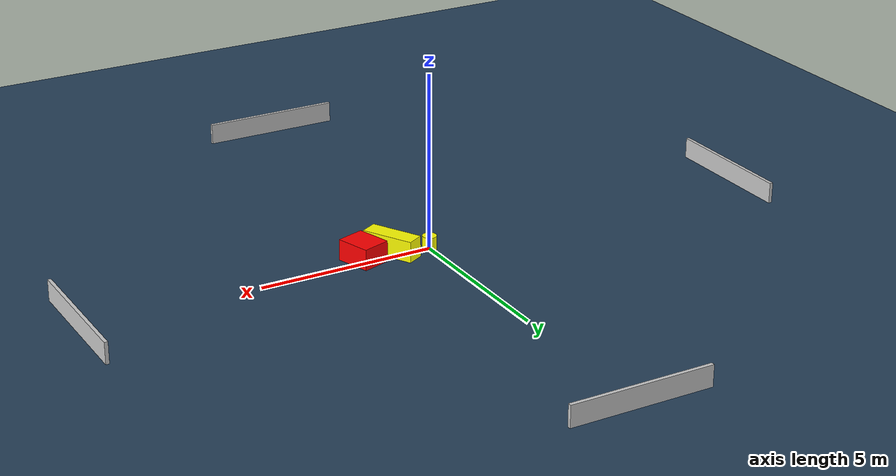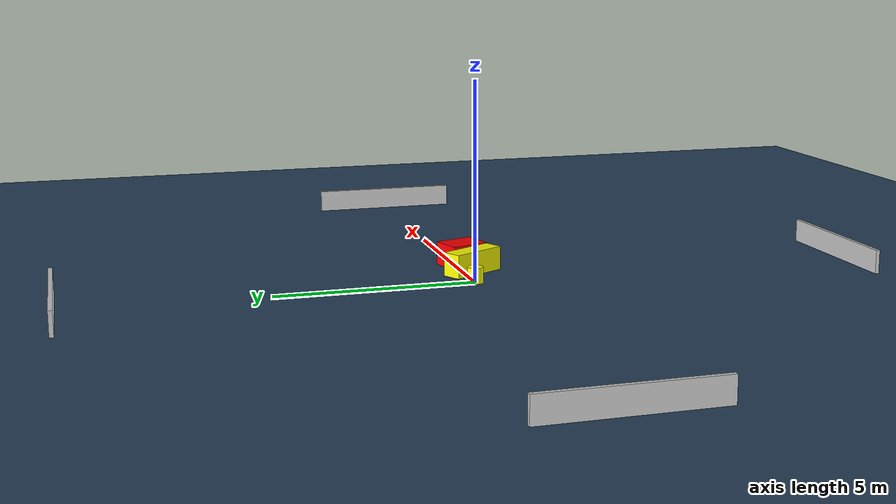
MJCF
<?xml version="1.0" ?>
<mujoco model="generated_environment">
  <option timestep="0.01" integrator="RK4" cone="elliptic"/>
  <default>
    <geom density="1"/>
  </default>
  <asset>
    <texture builtin="gradient" height="3072" name="skybox" rgb1="0.3 0.5 0.7" rgb2="0 0 0" type="skybox" width="512"/>
    <texture builtin="checker" height="300" name="groundplane" rgb1="0.2 0.3 0.4" rgb2="0.1 0.2 0.3" type="2d" width="300"/>
    <material name="groundplane" reflectance="0.2" texrepeat="5 5" texture="groundplane"/>
  </asset>
  <worldbody>
    <light dir="0 0 -1" directional="true" pos="0 0 1.5"/>
    <geom condim="3" friction="0.5 0.005 0.001" material="groundplane" name="floor" pos="0 0 0" size="0 0 0.05" type="plane"/>
    <body name="walls">
      <geom name="wall_1" condim="4" pos="-10.0 0.0 0.3" rgba="0.800000011920929 0.800000011920929 0.800000011920929 1.0" size="0.05 2.0 0.3" type="box"/>
      <geom name="wall_2" condim="4" pos="10.0 0.0 0.3" rgba="0.800000011920929 0.800000011920929 0.800000011920929 1.0" size="0.05 2.0 0.3" type="box"/>
      <geom name="wall_3" condim="4" pos="0.0 -10.0 0.3" rgba="0.800000011920929 0.800000011920929 0.800000011920929 1.0" size="2.0 0.05 0.3" type="box"/>
      <geom name="wall_4" condim="4" pos="0.0 10.0 0.3" rgba="0.800000011920929 0.800000011920929 0.800000011920929 1.0" size="2.0 0.05 0.3" type="box"/>
    </body>
    <body name="robot">
      <joint name="joint_x" type="slide" pos="0 0 0" axis="1 0 0"/>
      <joint name="joint_y" type="slide" pos="0 0 0" axis="0 1 0"/>
      <geom name="robot" type="cylinder" pos="0.0 0.0 0.2" size="0.2 0.2 0.0" mass="5.0" friction="1.0 0.005 0.0001" condim="4" rgba="1.0 1.0 0.0 1.0"/>
    </body>
    <body name="obstacle_1_movable">
      <geom name="obstacle_1_movable" condim="4" pos="1.0225124280482873 -0.2365922839607022 0.3" euler="0 0 298.87432234285046" friction="0.0 0.005 0.001" rgba="1.0 1.0 0.0 1.0" size="0.7504557953906301 0.25243090476410657 0.3" type="box" mass="0.1"/>
      <joint type="free"/>
    </body>
    <body name="obstacle_2_static">
      <geom name="obstacle_2_static" condim="4" pos="1.9053165555080318 -0.20436742796267834 0.3" euler="0 0 197.57118611875913" friction="0.0 0.005 0.001" rgba="1.0 0.0 0.0 1.0" size="0.40715641816130865 0.5004985921808971 0.3" type="box"/>
    </body>
  </worldbody>
  <actuator>
    <motor name="actuator_x" joint="joint_x" gear="1" ctrlrange="-1 1"/>
    <motor name="actuator_y" joint="joint_y" gear="1" ctrlrange="-1 1"/>
  </actuator>
</mujoco>
